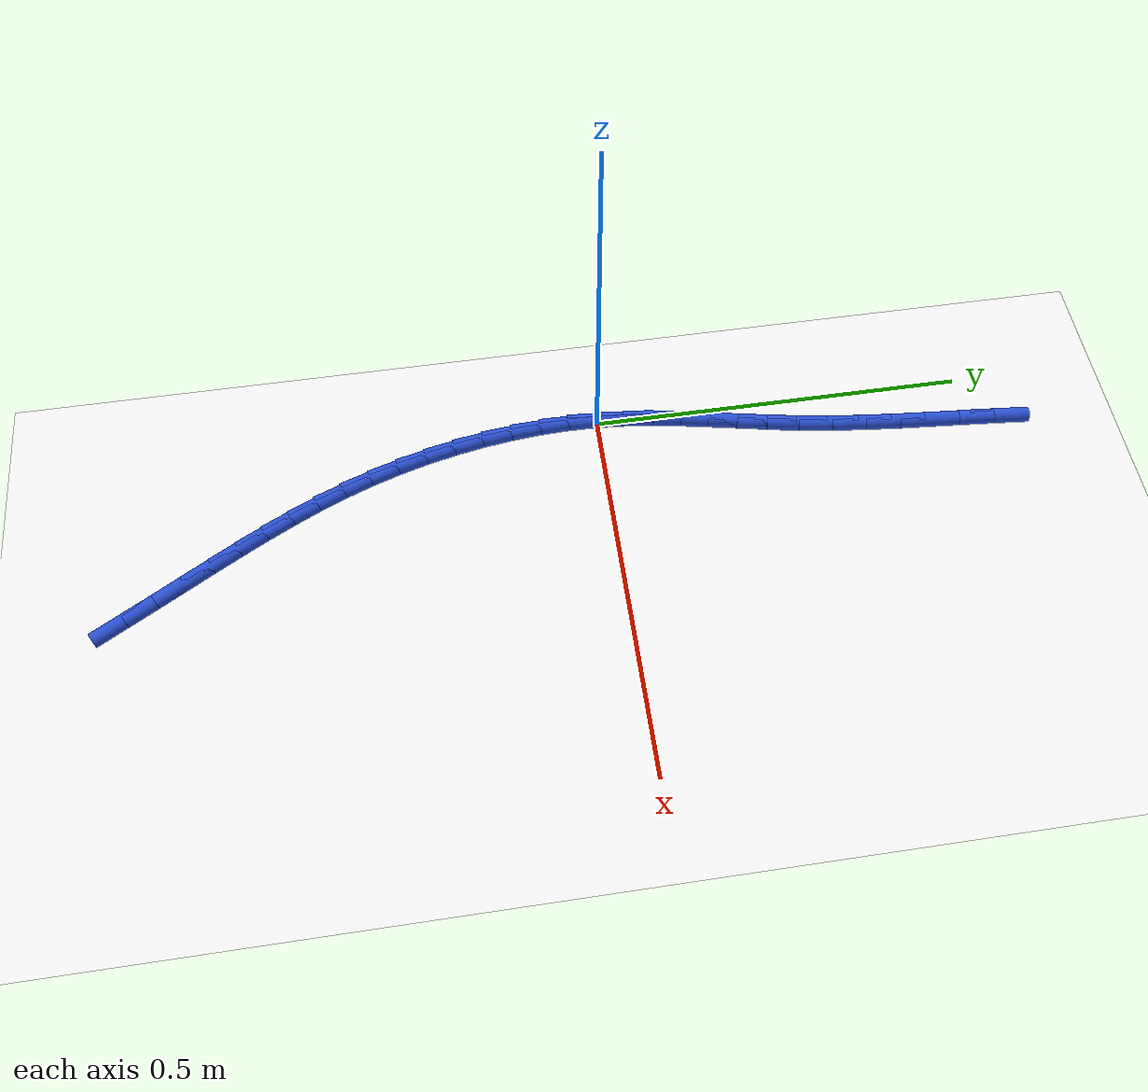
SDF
<sdf version="1.6">
 <world name="default">
  <model name="ground_plane">
   <static>1</static>
   <link name="link">
    <collision name="collision">
     <geometry><plane><normal>0 0 1</normal><size>100 100</size></plane></geometry>
     <surface><friction><ode><mu>100</mu><mu2>50</mu2></ode></friction></surface>
    </collision>
    <visual name="visual">
     <cast_shadows>0</cast_shadows>
     <geometry><plane><normal>0 0 1</normal><size>100 100</size></plane></geometry>
     <material>
      <script><uri>file://media/materials/scripts/gazebo.material</uri><name>Gazebo/WhiteGlow</name></script>
     </material>
    </visual>
   </link>
  </model>
  <model name="line">
   <link name="link_0">
    <pose>1.5612511283791264e-17 6.245004513516506e-17 0.01 0 1.57 1.4965390491002946</pose>
    <collision name="collision">
     <geometry><cylinder><radius>0.01</radius><length>0.08</length></cylinder></geometry>
    </collision>
    <visual name="visual">
     <material>
      <script><name>Gazebo/Blue</name><uri>file://media/materials/scripts/gazebo.material</uri></script>
     </material>
     <geometry><cylinder><radius>0.01</radius><length>0.08</length></cylinder></geometry>
    </visual>
   </link>
   <link name="link_1">
    <pose>0.0028098821377485947 0.037770244582822875 0.01 0 1.57 1.4478813549803822</pose>
    <collision name="collision">
     <geometry><cylinder><radius>0.01</radius><length>0.08</length></cylinder></geometry>
    </collision>
    <visual name="visual">
     <material>
      <script><name>Gazebo/Blue</name><uri>file://media/materials/scripts/gazebo.material</uri></script>
     </material>
     <geometry><cylinder><radius>0.01</radius><length>0.08</length></cylinder></geometry>
    </visual>
   </link>
   <link name="link_2">
    <pose>0.007415832168220956 0.07505399336716743 0.01 0 1.57 1.4113431468086133</pose>
    <collision name="collision">
     <geometry><cylinder><radius>0.01</radius><length>0.08</length></cylinder></geometry>
    </collision>
    <visual name="visual">
     <material>
      <script><name>Gazebo/Blue</name><uri>file://media/materials/scripts/gazebo.material</uri></script>
     </material>
     <geometry><cylinder><radius>0.01</radius><length>0.08</length></cylinder></geometry>
    </visual>
   </link>
   <link name="link_3">
    <pose>0.013392882435788308 0.1122204397472849 0.01 0 1.57 1.3878441354074638</pose>
    <collision name="collision">
     <geometry><cylinder><radius>0.01</radius><length>0.08</length></cylinder></geometry>
    </collision>
    <visual name="visual">
     <material>
      <script><name>Gazebo/Blue</name><uri>file://media/materials/scripts/gazebo.material</uri></script>
     </material>
     <geometry><cylinder><radius>0.01</radius><length>0.08</length></cylinder></geometry>
    </visual>
   </link>
   <link name="link_4">
    <pose>0.020316065284821876 0.1496387771174266 0.01 0 1.57 1.3775379466092406</pose>
    <collision name="collision">
     <geometry><cylinder><radius>0.01</radius><length>0.08</length></cylinder></geometry>
    </collision>
    <visual name="visual">
     <material>
      <script><name>Gazebo/Blue</name><uri>file://media/materials/scripts/gazebo.material</uri></script>
     </material>
     <geometry><cylinder><radius>0.01</radius><length>0.08</length></cylinder></geometry>
    </visual>
   </link>
   <link name="link_5">
    <pose>0.02776041305969285 0.18767819887184367 0.01 0 1.57 1.3799475211835062</pose>
    <collision name="collision">
     <geometry><cylinder><radius>0.01</radius><length>0.08</length></cylinder></geometry>
    </collision>
    <visual name="visual">
     <material>
      <script><name>Gazebo/Blue</name><uri>file://media/materials/scripts/gazebo.material</uri></script>
     </material>
     <geometry><cylinder><radius>0.01</radius><length>0.08</length></cylinder></geometry>
    </visual>
   </link>
   <link name="link_6">
    <pose>0.03530095810477245 0.2267078984047874 0.01 0 1.57 1.3941013213438622</pose>
    <collision name="collision">
     <geometry><cylinder><radius>0.01</radius><length>0.08</length></cylinder></geometry>
    </collision>
    <visual name="visual">
     <material>
      <script><name>Gazebo/Blue</name><uri>file://media/materials/scripts/gazebo.material</uri></script>
     </material>
     <geometry><cylinder><radius>0.01</radius><length>0.08</length></cylinder></geometry>
    </visual>
   </link>
   <link name="link_7">
    <pose>0.04251273276443188 0.267097069110509 0.01 0 1.57 1.4186487297515342</pose>
    <collision name="collision">
     <geometry><cylinder><radius>0.01</radius><length>0.08</length></cylinder></geometry>
    </collision>
    <visual name="visual">
     <material>
      <script><name>Gazebo/Blue</name><uri>file://media/materials/scripts/gazebo.material</uri></script>
     </material>
     <geometry><cylinder><radius>0.01</radius><length>0.08</length></cylinder></geometry>
    </visual>
   </link>
   <link name="link_8">
    <pose>0.048970769394922814 0.3092149043697018 0.01 0 1.57 1.4487984110381387</pose>
    <collision name="collision">
     <geometry><cylinder><radius>0.01</radius><length>0.08</length></cylinder></geometry>
    </collision>
    <visual name="visual">
     <material>
      <script><name>Gazebo/Blue</name><uri>file://media/materials/scripts/gazebo.material</uri></script>
     </material>
     <geometry><cylinder><radius>0.01</radius><length>0.08</length></cylinder></geometry>
    </visual>
   </link>
   <link name="link_9">
    <pose>0.05437450703567692 0.35328862596884286 0.01 0 1.57 1.47177717067165</pose>
    <collision name="collision">
     <geometry><cylinder><radius>0.01</radius><length>0.08</length></cylinder></geometry>
    </collision>
    <visual name="visual">
     <material>
      <script><name>Gazebo/Blue</name><uri>file://media/materials/scripts/gazebo.material</uri></script>
     </material>
     <geometry><cylinder><radius>0.01</radius><length>0.08</length></cylinder></geometry>
    </visual>
   </link>
   <link name="link_10">
    <pose>0.05891420357451561 0.39898533840331074 0.01 0 1.57 1.4858984247100178</pose>
    <collision name="collision">
     <geometry><cylinder><radius>0.01</radius><length>0.08</length></cylinder></geometry>
    </collision>
    <visual name="visual">
     <material>
      <script><name>Gazebo/Blue</name><uri>file://media/materials/scripts/gazebo.material</uri></script>
     </material>
     <geometry><cylinder><radius>0.01</radius><length>0.08</length></cylinder></geometry>
    </visual>
   </link>
   <link name="link_11">
    <pose>0.06290114286067174 0.44583403261827953 0.01 0 1.57 1.4921561440001427</pose>
    <collision name="collision">
     <geometry><cylinder><radius>0.01</radius><length>0.08</length></cylinder></geometry>
    </collision>
    <visual name="visual">
     <material>
      <script><name>Gazebo/Blue</name><uri>file://media/materials/scripts/gazebo.material</uri></script>
     </material>
     <geometry><cylinder><radius>0.01</radius><length>0.08</length></cylinder></geometry>
    </visual>
   </link>
   <link name="link_12">
    <pose>0.06664660874337813 0.4933636995589232 0.01 0 1.57 1.4910473928540988</pose>
    <collision name="collision">
     <geometry><cylinder><radius>0.01</radius><length>0.08</length></cylinder></geometry>
    </collision>
    <visual name="visual">
     <material>
      <script><name>Gazebo/Blue</name><uri>file://media/materials/scripts/gazebo.material</uri></script>
     </material>
     <geometry><cylinder><radius>0.01</radius><length>0.08</length></cylinder></geometry>
    </visual>
   </link>
   <link name="link_13">
    <pose>0.0704618850718677 0.5411033301704159 0.01 0 1.57 1.4826409101869793</pose>
    <collision name="collision">
     <geometry><cylinder><radius>0.01</radius><length>0.08</length></cylinder></geometry>
    </collision>
    <visual name="visual">
     <material>
      <script><name>Gazebo/Blue</name><uri>file://media/materials/scripts/gazebo.material</uri></script>
     </material>
     <geometry><cylinder><radius>0.01</radius><length>0.08</length></cylinder></geometry>
    </visual>
   </link>
   <link name="link_183">
    <pose>0.21281731102766147 -0.6262599721188371 0.01 0 1.57 -1.0546378314187446</pose>
    <collision name="collision">
     <geometry><cylinder><radius>0.01</radius><length>0.08</length></cylinder></geometry>
    </collision>
    <visual name="visual">
     <material>
      <script><name>Gazebo/Blue</name><uri>file://media/materials/scripts/gazebo.material</uri></script>
     </material>
     <geometry><cylinder><radius>0.01</radius><length>0.08</length></cylinder></geometry>
    </visual>
   </link>
   <link name="link_184">
    <pose>0.19117889271329103 -0.5881287290992052 0.01 0 1.57 -1.050277950296354</pose>
    <collision name="collision">
     <geometry><cylinder><radius>0.01</radius><length>0.08</length></cylinder></geometry>
    </collision>
    <visual name="visual">
     <material>
      <script><name>Gazebo/Blue</name><uri>file://media/materials/scripts/gazebo.material</uri></script>
     </material>
     <geometry><cylinder><radius>0.01</radius><length>0.08</length></cylinder></geometry>
    </visual>
   </link>
   <link name="link_185">
    <pose>0.1701623891973426 -0.551466730458539 0.01 0 1.57 -1.0500839934430357</pose>
    <collision name="collision">
     <geometry><cylinder><radius>0.01</radius><length>0.08</length></cylinder></geometry>
    </collision>
    <visual name="visual">
     <material>
      <script><name>Gazebo/Blue</name><uri>file://media/materials/scripts/gazebo.material</uri></script>
     </material>
     <geometry><cylinder><radius>0.01</radius><length>0.08</length></cylinder></geometry>
    </visual>
   </link>
   <link name="link_186">
    <pose>0.1498518873533491 -0.5160522300504623 0.01 0 1.57 -1.0569048131018655</pose>
    <collision name="collision">
     <geometry><cylinder><radius>0.01</radius><length>0.08</length></cylinder></geometry>
    </collision>
    <visual name="visual">
     <material>
      <script><name>Gazebo/Blue</name><uri>file://media/materials/scripts/gazebo.material</uri></script>
     </material>
     <geometry><cylinder><radius>0.01</radius><length>0.08</length></cylinder></geometry>
    </visual>
   </link>
   <link name="link_187">
    <pose>0.13035789430675918 -0.48151774155763793 0.01 0 1.57 -1.0712334586583399</pose>
    <collision name="collision">
     <geometry><cylinder><radius>0.01</radius><length>0.08</length></cylinder></geometry>
    </collision>
    <visual name="visual">
     <material>
      <script><name>Gazebo/Blue</name><uri>file://media/materials/scripts/gazebo.material</uri></script>
     </material>
     <geometry><cylinder><radius>0.01</radius><length>0.08</length></cylinder></geometry>
    </visual>
   </link>
   <link name="link_188">
    <pose>0.11179091720293183 -0.44749577855289874 0.01 0 1.57 -1.093290103163201</pose>
    <collision name="collision">
     <geometry><cylinder><radius>0.01</radius><length>0.08</length></cylinder></geometry>
    </collision>
    <visual name="visual">
     <material>
      <script><name>Gazebo/Blue</name><uri>file://media/materials/scripts/gazebo.material</uri></script>
     </material>
     <geometry><cylinder><radius>0.01</radius><length>0.08</length></cylinder></geometry>
    </visual>
   </link>
   <link name="link_189">
    <pose>0.09426146318722596 -0.4136188546090781 0.01 0 1.57 -1.1229492603607125</pose>
    <collision name="collision">
     <geometry><cylinder><radius>0.01</radius><length>0.08</length></cylinder></geometry>
    </collision>
    <visual name="visual">
     <material>
      <script><name>Gazebo/Blue</name><uri>file://media/materials/scripts/gazebo.material</uri></script>
     </material>
     <geometry><cylinder><radius>0.01</radius><length>0.08</length></cylinder></geometry>
    </visual>
   </link>
   <link name="link_190">
    <pose>0.07788003940500043 -0.3795194832990089 0.01 0 1.57 -1.1596855779964013</pose>
    <collision name="collision">
     <geometry><cylinder><radius>0.01</radius><length>0.08</length></cylinder></geometry>
    </collision>
    <visual name="visual">
     <material>
      <script><name>Gazebo/Blue</name><uri>file://media/materials/scripts/gazebo.material</uri></script>
     </material>
     <geometry><cylinder><radius>0.01</radius><length>0.08</length></cylinder></geometry>
    </visual>
   </link>
   <link name="link_191">
    <pose>0.06275715300161422 -0.3448301781955244 0.01 0 1.57 -1.2025583395466788</pose>
    <collision name="collision">
     <geometry><cylinder><radius>0.01</radius><length>0.08</length></cylinder></geometry>
    </collision>
    <visual name="visual">
     <material>
      <script><name>Gazebo/Blue</name><uri>file://media/materials/scripts/gazebo.material</uri></script>
     </material>
     <geometry><cylinder><radius>0.01</radius><length>0.08</length></cylinder></geometry>
    </visual>
   </link>
   <link name="link_192">
    <pose>0.04900331112242645 -0.30918345287145843 0.01 0 1.57 -1.2493281148905937</pose>
    <collision name="collision">
     <geometry><cylinder><radius>0.01</radius><length>0.08</length></cylinder></geometry>
    </collision>
    <visual name="visual">
     <material>
      <script><name>Gazebo/Blue</name><uri>file://media/materials/scripts/gazebo.material</uri></script>
     </material>
     <geometry><cylinder><radius>0.01</radius><length>0.08</length></cylinder></geometry>
    </visual>
   </link>
   <link name="link_193">
    <pose>0.03672608968304506 -0.27231709535329673 0.01 0 1.57 -1.2956624572586946</pose>
    <collision name="collision">
     <geometry><cylinder><radius>0.01</radius><length>0.08</length></cylinder></geometry>
    </collision>
    <visual name="visual">
     <material>
      <script><name>Gazebo/Blue</name><uri>file://media/materials/scripts/gazebo.material</uri></script>
     </material>
     <geometry><cylinder><radius>0.01</radius><length>0.08</length></cylinder></geometry>
    </visual>
   </link>
   <link name="link_194">
    <pose>0.026021177043766837 -0.23439583252845214 0.01 0 1.57 -1.3413395646058786</pose>
    <collision name="collision">
     <geometry><cylinder><radius>0.01</radius><length>0.08</length></cylinder></geometry>
    </collision>
    <visual name="visual">
     <material>
      <script><name>Gazebo/Blue</name><uri>file://media/materials/scripts/gazebo.material</uri></script>
     </material>
     <geometry><cylinder><radius>0.01</radius><length>0.08</length></cylinder></geometry>
    </visual>
   </link>
   <link name="link_195">
    <pose>0.01698124845458834 -0.19569260645941156 0.01 0 1.57 -1.3871741287700334</pose>
    <collision name="collision">
     <geometry><cylinder><radius>0.01</radius><length>0.08</length></cylinder></geometry>
    </collision>
    <visual name="visual">
     <material>
      <script><name>Gazebo/Blue</name><uri>file://media/materials/scripts/gazebo.material</uri></script>
     </material>
     <geometry><cylinder><radius>0.01</radius><length>0.08</length></cylinder></geometry>
    </visual>
   </link>
   <link name="link_196">
    <pose>0.009698979165218374 -0.1564803592189958 0.01 0 1.57 -1.4339593634325303</pose>
    <collision name="collision">
     <geometry><cylinder><radius>0.01</radius><length>0.08</length></cylinder></geometry>
    </collision>
    <visual name="visual">
     <material>
      <script><name>Gazebo/Blue</name><uri>file://media/materials/scripts/gazebo.material</uri></script>
     </material>
     <geometry><cylinder><radius>0.01</radius><length>0.08</length></cylinder></geometry>
    </visual>
   </link>
   <link name="link_197">
    <pose>0.004267044425365747 -0.11703203288002584 0.01 0 1.57 -1.482500859672132</pose>
    <collision name="collision">
     <geometry><cylinder><radius>0.01</radius><length>0.08</length></cylinder></geometry>
    </collision>
    <visual name="visual">
     <material>
      <script><name>Gazebo/Blue</name><uri>file://media/materials/scripts/gazebo.material</uri></script>
     </material>
     <geometry><cylinder><radius>0.01</radius><length>0.08</length></cylinder></geometry>
    </visual>
   </link>
   <link name="link_198">
    <pose>0.000778119484739272 -0.07762056951532262 0.01 0 1.57 -1.533647740421165</pose>
    <collision name="collision">
     <geometry><cylinder><radius>0.01</radius><length>0.08</length></cylinder></geometry>
    </collision>
    <visual name="visual">
     <material>
      <script><name>Gazebo/Blue</name><uri>file://media/materials/scripts/gazebo.material</uri></script>
     </material>
     <geometry><cylinder><radius>0.01</radius><length>0.08</length></cylinder></geometry>
    </visual>
   </link>
   <link name="link_199">
    <pose>-0.0006751204069522371 -0.038518911197707034 0.01 0 1.57 1.5532711354682072</pose>
    <collision name="collision">
     <geometry><cylinder><radius>0.01</radius><length>0.08</length></cylinder></geometry>
    </collision>
    <visual name="visual">
     <material>
      <script><name>Gazebo/Blue</name><uri>file://media/materials/scripts/gazebo.material</uri></script>
     </material>
     <geometry><cylinder><radius>0.01</radius><length>0.08</length></cylinder></geometry>
    </visual>
   </link>
   <link name="link_200">
    <pose>2.6020852139652106e-17 -1.3877787807814457e-17 0.01 0 1.57 1.4940512255812897</pose>
    <collision name="collision">
     <geometry><cylinder><radius>0.01</radius><length>0.08</length></cylinder></geometry>
    </collision>
    <visual name="visual">
     <material>
      <script><name>Gazebo/Blue</name><uri>file://media/materials/scripts/gazebo.material</uri></script>
     </material>
     <geometry><cylinder><radius>0.01</radius><length>0.08</length></cylinder></geometry>
    </visual>
   </link>
   <link name="link_201">
    <pose>0.0028961559553049594 0.03766322200497832 0.01 0 1.57 1.4940512255812894</pose>
    <collision name="collision">
     <geometry><cylinder><radius>0.01</radius><length>0.08</length></cylinder></geometry>
    </collision>
    <visual name="visual">
     <material>
      <script><name>Gazebo/Blue</name><uri>file://media/materials/scripts/gazebo.material</uri></script>
     </material>
     <geometry><cylinder><radius>0.01</radius><length>0.08</length></cylinder></geometry>
    </visual>
   </link>
  </model>
 </world>
</sdf>
